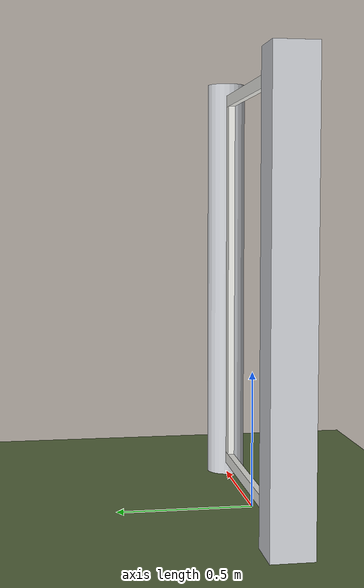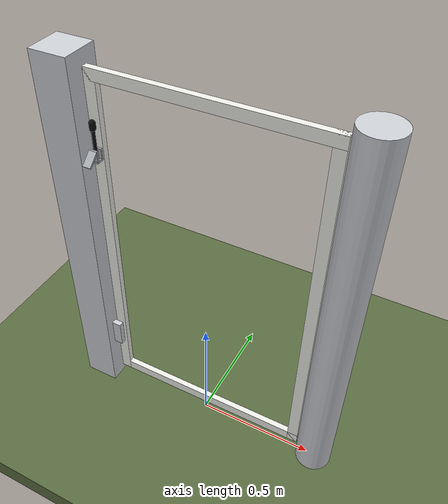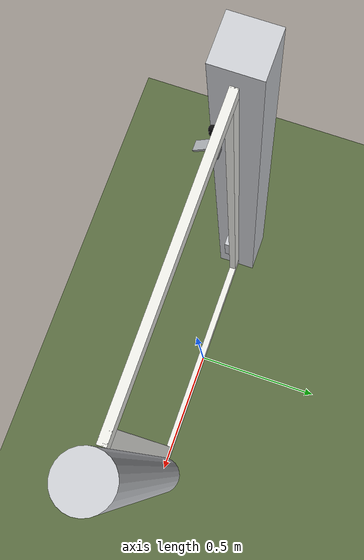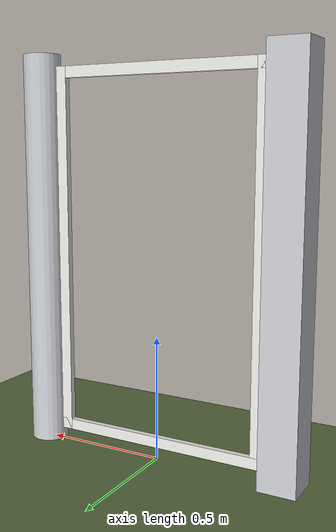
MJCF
<?xml version="1.0" ?>
<mujoco model="db0075_gate_swing_minimal">
  <compiler angle="radian" meshdir="../../hardware" texturedir="../../textures" autolimits="true" inertiafromgeom="false"/>
  <option timestep="0.002" integrator="implicitfast" cone="elliptic" impratio="10" noslip_iterations="3">
    <flag multiccd="enable"/>
  </option>
  <size memory="16M"/>
  <default>
    <geom condim="4" solref="0.005 1" solimp="0.95 0.99 0.001"/>
    <joint solreflimit="0.005 1" solimplimit="0.95 0.99 0.001"/>
    <tendon solreflimit="0.005 1"/>
    <equality solref="0.002 1"/>
  </default>
  <visual>
    <headlight ambient="0.4 0.4 0.4" diffuse="0.7 0.7 0.7" specular="0.2 0.2 0.2"/>
    <quality shadowsize="4096"/>
    <map znear="0.01" zfar="60"/>
  </visual>
  <asset>
    <material name="mat_floor" rgba="0.35 0.42 0.25 1" specular="0.2" shininess="0.15" reflectance="0"/>
    <material name="mat_wall" rgba="0.78 0.76 0.7 1" specular="0.2" shininess="0.1" reflectance="0"/>
    <material name="mat_leaf" rgba="0.93 0.93 0.91 1" specular="0.23" shininess="0.38" reflectance="0.02"/>
    <material name="mat_hinge" rgba="0.65 0.66 0.68 1" specular="0.74" shininess="0.5" reflectance="0.36"/>
    <material name="mat_op_black_matte_metal" rgba="0.05 0.05 0.05 1" specular="0.38" shininess="0.3" reflectance="0.12"/>
    <material name="mat_keeper" rgba="0.65 0.66 0.68 1" specular="0.74" shininess="0.5" reflectance="0.36"/>
    <material name="mat_frame" rgba="0.8 0.81 0.83 1" specular="0.8" shininess="0.6" reflectance="0.4"/>
    <material name="mat_fence_mesh" rgba="0.6 0.62 0.64 0.5" specular="0.68" shininess="0.3" reflectance="0.1"/>
    <texture name="skybox" type="skybox" builtin="gradient" rgb1="0.6 0.7 0.85" rgb2="0.9 0.92 0.95" width="256" height="256"/>
  </asset>
  <worldbody>
    <light name="sun" pos="1.5 -2.5 4" dir="-0.3 0.5 -0.8" directional="true" diffuse="0.8 0.8 0.8" specular="0.3 0.3 0.3" castshadow="true"/>
    <light name="fill" pos="-1.5 2.5 3" dir="0.3 -0.5 -0.7" directional="true" diffuse="0.35 0.35 0.4" castshadow="false"/>
    <camera name="robot_view" pos="0 -2.05 1.334" xyaxes="1 0 0 0 0.26963 0.962964" fovy="52"/>
    <camera name="far_view" pos="0 2.05 1.334" xyaxes="-1 0 0 0 -0.26963 0.962964" fovy="52"/>
    <camera name="iso" pos="-1.558 -1.722 1.662" xyaxes="0.741536 -0.670913 0 0.242917 0.268487 0.932151" fovy="46"/>
    <camera name="detail_handle" pos="-0.227 -0.8475 1.645" xyaxes="0.97561 0.219512 0 -0.070934 0.315262 0.94635" fovy="38"/>
    <geom name="floor" type="box" size="6 6 0.05" pos="0 0 -0.05" material="mat_floor" group="0" contype="1" conaffinity="1" friction="0.8 0.005 0.0001" density="2400"/>
    <geom name="post_hinge" type="cylinder" size="0.075 0.8" pos="0.531 0 0.8" material="mat_frame" group="0" contype="1" conaffinity="1" friction="0.6 0.005 0.0001" density="800"/>
    <geom name="post_latch" type="box" size="0.075 0.075 0.8" pos="-0.531 0 0.8" material="mat_frame" group="0" contype="1" conaffinity="1" friction="0.6 0.005 0.0001" density="800"/>
    <geom name="gate_stop" type="box" size="0.02 0.012 0.06" pos="-0.436 -0.0245 0.3" material="mat_frame" group="0" contype="1" conaffinity="1" friction="0.6 0.005 0.0001" density="800"/>
    <site name="approach_point" pos="0 -1.5 0" quat="1 0 0 0" size="0.05" rgba="0.2 0.9 0.2 0.5" group="4"/>
    <site name="goal_point" pos="0 1.5 0" quat="1 0 0 0" size="0.05" rgba="0.2 0.9 0.2 0.5" group="4"/>
    <site name="door_plane_center" pos="0 0 0.76" quat="1 0 0 0" size="0.02" rgba="0.2 0.9 0.2 0.5" group="4"/>
    <body name="leaf" pos="0.456 0 0">
      <inertial pos="-0.456682 -0.000539 0.804037" mass="41.306832" quat="-0.497658 0.495437 0.503901 0.502953" diaginertia="2.828099417 7.755095085 10.576038389"/>
      <joint name="leaf_hinge" type="hinge" axis="0 0 -1" pos="-0.003 0.05 0" limited="true" range="0 1.745329" damping="8.177737" frictionloss="0.823949" stiffness="5" springref="-0.8" armature="0.02"/>
      <geom name="leaf_slab_col" type="box" size="0.45 0.0125 0.75" pos="-0.453 0 0.8" material="mat_leaf" group="3" contype="1" conaffinity="1" rgba="0.8 0.3 0.3 0.25" friction="0.45 0.005 0.0001" density="1"/>
      <geom name="leaf_rail_b" type="box" size="0.45 0.0125 0.0225" pos="-0.453 0 0.0725" material="mat_leaf" group="1" contype="0" conaffinity="0" density="1"/>
      <geom name="leaf_rail_t" type="box" size="0.45 0.0125 0.0225" pos="-0.453 0 1.5275" material="mat_leaf" group="1" contype="0" conaffinity="0" density="1"/>
      <geom name="leaf_stile_h" type="box" size="0.0225 0.0125 0.75" pos="-0.0255 0 0.8" material="mat_leaf" group="1" contype="0" conaffinity="0" density="1"/>
      <geom name="leaf_stile_l" type="box" size="0.0225 0.0125 0.75" pos="-0.8805 0 0.8" material="mat_leaf" group="1" contype="0" conaffinity="0" density="1"/>
      <geom name="leaf_cup_n" type="box" size="0.016 0.004 0.02" pos="-0.863 -0.0595 1.255" material="mat_keeper" group="0" contype="1" conaffinity="1" friction="0.6 0.005 0.0001" density="7800"/>
      <geom name="leaf_cup_p" type="box" size="0.016 0.004 0.02" pos="-0.863 -0.0355 1.255" material="mat_keeper" group="0" contype="1" conaffinity="1" friction="0.6 0.005 0.0001" density="7800"/>
      <geom name="leaf_cup_b" type="box" size="0.016 0.016 0.004" pos="-0.863 -0.0475 1.231" material="mat_keeper" group="0" contype="1" conaffinity="1" friction="0.6 0.005 0.0001" density="7800"/>
      <geom name="leaf_cup_ramp" type="box" size="0.016 0.0301 0.004" pos="-0.863 -0.083344 1.252012" quat="0.355381 -0.934722 0 0" material="mat_keeper" group="0" contype="1" conaffinity="1" friction="0.12 0.005 0.0001" density="7800"/>
      <site name="leaf_edge_mid" pos="-0.903 0 0.75" quat="1 0 0 0" size="0.02" rgba="0.2 0.9 0.2 0.5" group="4"/>
    </body>
    <body name="leaf_pin" pos="-0.407 -0.0475 1.3">
      <inertial pos="0 0 0.037519" mass="0.228168" quat="0.707107 0 0.707107 0" diaginertia="0.000010167 0.000346413 0.000346413"/>
      <joint name="leaf_pin_slide" type="slide" axis="0 0 1" limited="true" range="0 0.06" damping="9.526824" frictionloss="0.25" stiffness="60" springref="-0.016667" armature="0.15"/>
      <geom name="leaf_pin_geom" type="capsule" size="0.006 0.0525" pos="0 0 0.0025" material="mat_op_black_matte_metal" group="0" contype="1" conaffinity="1" friction="0.6 0.005 0.0001" density="7850"/>
      <geom name="leaf_pin_knob" type="capsule" size="0.012 0.01" pos="0 0 0.065" material="mat_op_black_matte_metal" group="0" contype="1" conaffinity="1" friction="0.6 0.005 0.0001" density="7850"/>
      <site name="leaf_grip_pin" pos="0 0 0.065" quat="1 0 0 0" size="0.012" rgba="0.2 0.9 0.2 0.5" group="4"/>
    </body>
  </worldbody>
  <sensor>
    <jointpos name="leaf_hinge_pos" joint="leaf_hinge"/>
    <jointvel name="leaf_hinge_vel" joint="leaf_hinge"/>
    <jointpos name="leaf_pin_slide_pos" joint="leaf_pin_slide"/>
    <jointvel name="leaf_pin_slide_vel" joint="leaf_pin_slide"/>
  </sensor>
</mujoco>
